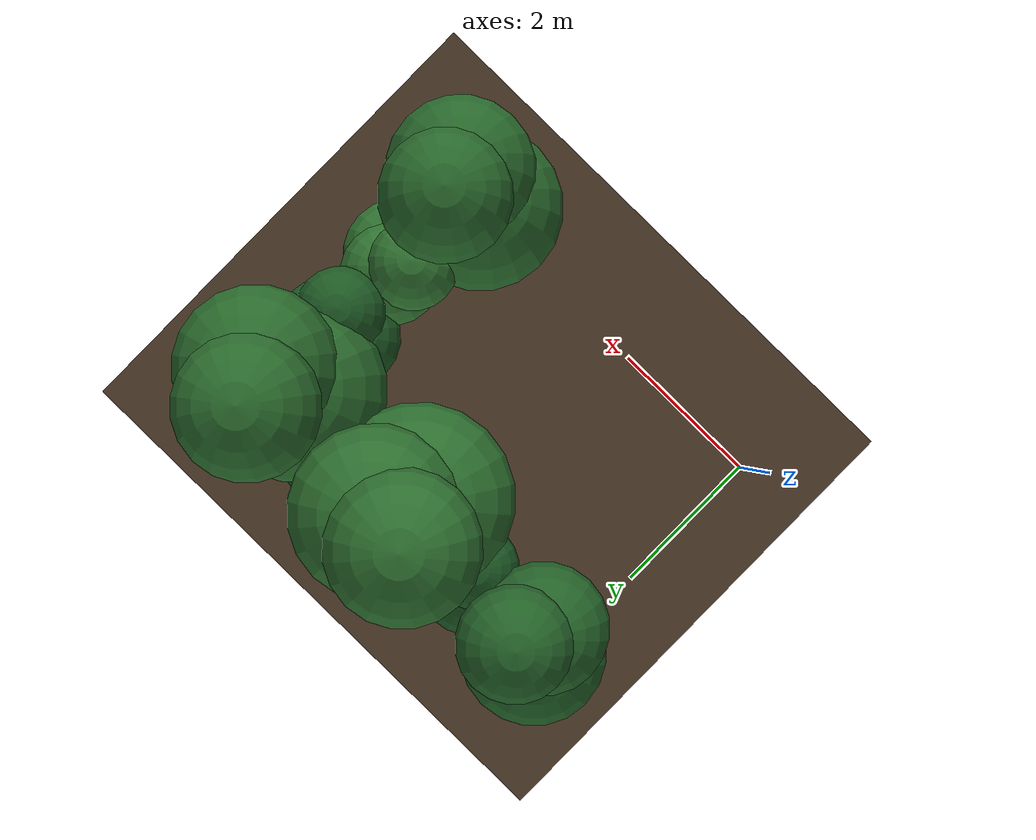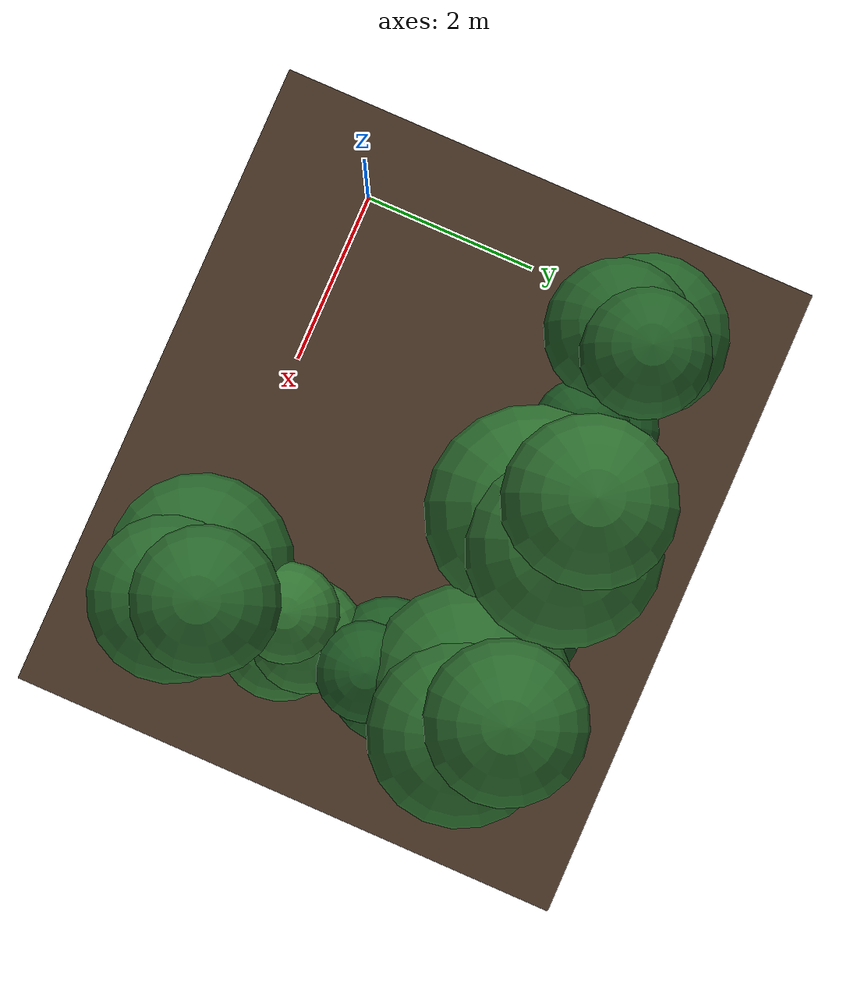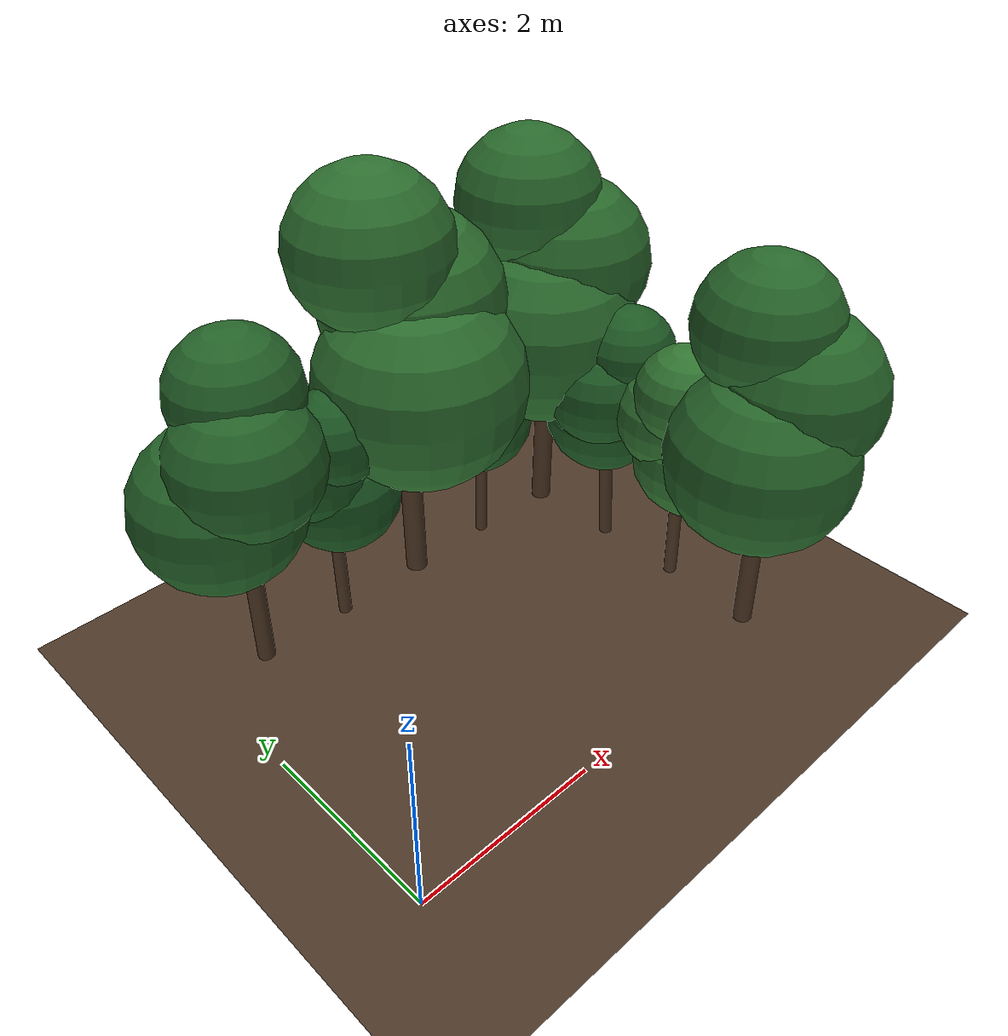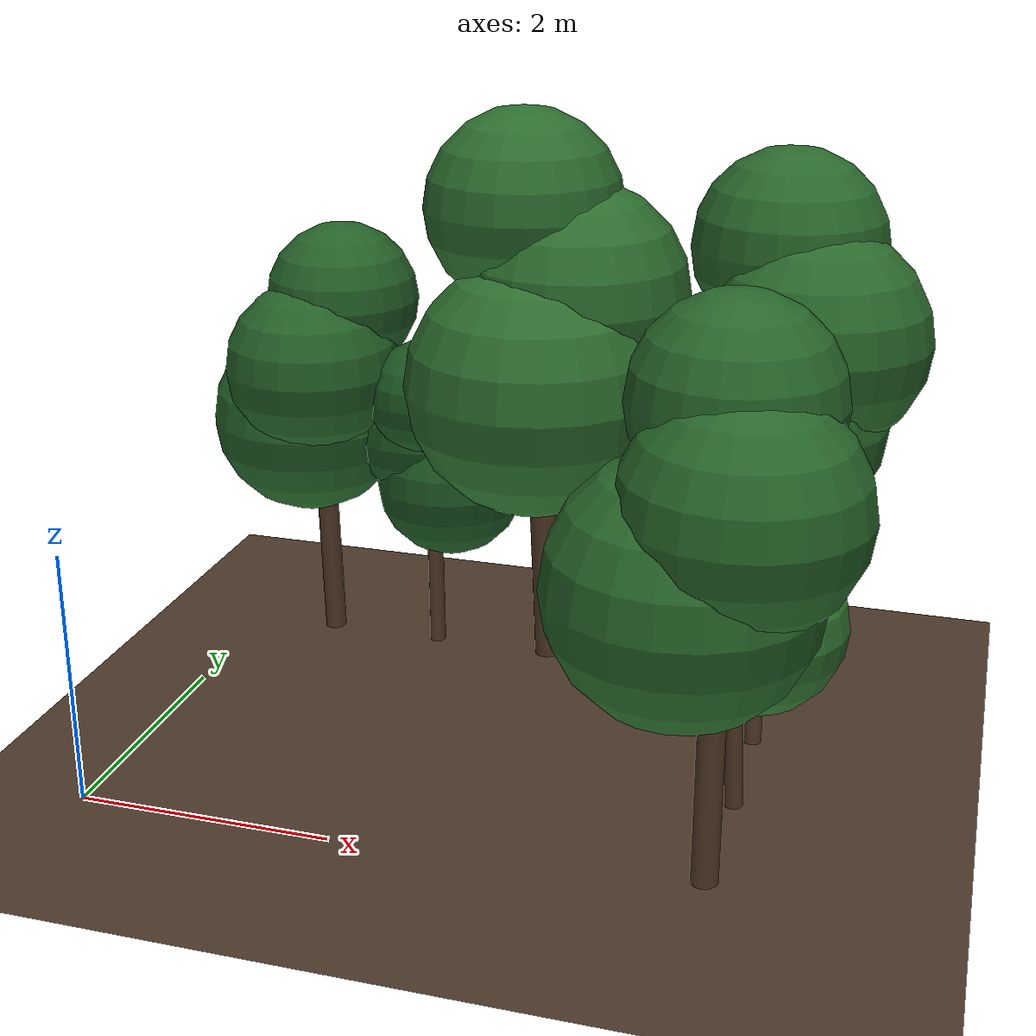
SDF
<sdf version="1.9">
 <world name="jim_field">
  <model name="ground_plane">
   <static>true</static>
   <link name="link">
    <collision name="collision">
     <geometry><plane><normal>0 0 1</normal><size>40 40</size></plane></geometry>
    </collision>
    <visual name="visual">
     <geometry><plane><normal>0 0 1</normal><size>40 40</size></plane></geometry>
     <material>
      <ambient>0.20 0.15 0.11 1</ambient>
      <diffuse>0.30 0.22 0.16 1</diffuse>
      <specular>0.01 0.01 0.01 1</specular>
     </material>
    </visual>
   </link>
  </model>
  <model name="field">
   <static>true</static>
   <pose>0.1837 -0.2516 0 0 0 0</pose>
   <model name="tree_5">
    <static>true</static>
    <pose>0.5056 3.5500 0 0 0 0</pose>
    <link name="link">
     <visual name="trunk">
      <pose>0 0 0.8213 0.0190 -0.0138 0</pose>
      <geometry><cylinder><radius>0.0913</radius><length>1.6426</length></cylinder></geometry>
      <material>
       <ambient>0.16 0.11 0.07 1</ambient>
       <diffuse>0.34 0.24 0.16 1</diffuse>
       <specular>0.03 0.03 0.03 1</specular>
      </material>
     </visual>
     <visual name="foliage_0">
      <pose>-0.1741 0.1000 2.0222 0 0 0</pose>
      <geometry><sphere><radius>0.8578</radius></sphere></geometry>
      <material>
       <ambient>0.067 0.196 0.073 1</ambient>
       <diffuse>0.144 0.391 0.161 1</diffuse>
       <specular>0.02 0.03 0.02 1</specular>
      </material>
     </visual>
     <visual name="foliage_1">
      <pose>0.0016 -0.2008 2.5698 0 0 0</pose>
      <geometry><sphere><radius>0.7574</radius></sphere></geometry>
      <material>
       <ambient>0.067 0.196 0.073 1</ambient>
       <diffuse>0.144 0.391 0.161 1</diffuse>
       <specular>0.02 0.03 0.02 1</specular>
      </material>
     </visual>
     <visual name="foliage_2">
      <pose>0.1725 0.1027 3.1173 0 0 0</pose>
      <geometry><sphere><radius>0.6570</radius></sphere></geometry>
      <material>
       <ambient>0.067 0.196 0.073 1</ambient>
       <diffuse>0.144 0.391 0.161 1</diffuse>
       <specular>0.02 0.03 0.02 1</specular>
      </material>
     </visual>
    </link>
   </model>
   <model name="tree_6">
    <static>true</static>
    <pose>1.5167 3.5500 0 0 0 0</pose>
    <link name="link">
     <visual name="trunk">
      <pose>0 0 0.6220 -0.0064 -0.0100 0</pose>
      <geometry><cylinder><radius>0.0691</radius><length>1.2441</length></cylinder></geometry>
      <material>
       <ambient>0.16 0.11 0.07 1</ambient>
       <diffuse>0.34 0.24 0.16 1</diffuse>
       <specular>0.03 0.03 0.03 1</specular>
      </material>
     </visual>
     <visual name="foliage_0">
      <pose>0.1354 0.0691 1.5316 0 0 0</pose>
      <geometry><sphere><radius>0.6497</radius></sphere></geometry>
      <material>
       <ambient>0.053 0.175 0.062 1</ambient>
       <diffuse>0.108 0.341 0.136 1</diffuse>
       <specular>0.02 0.03 0.02 1</specular>
      </material>
     </visual>
     <visual name="foliage_1">
      <pose>-0.1280 0.0820 1.9463 0 0 0</pose>
      <geometry><sphere><radius>0.5737</radius></sphere></geometry>
      <material>
       <ambient>0.053 0.175 0.062 1</ambient>
       <diffuse>0.108 0.341 0.136 1</diffuse>
       <specular>0.02 0.03 0.02 1</specular>
      </material>
     </visual>
     <visual name="foliage_2">
      <pose>-0.0062 -0.1519 2.3610 0 0 0</pose>
      <geometry><sphere><radius>0.4976</radius></sphere></geometry>
      <material>
       <ambient>0.053 0.175 0.062 1</ambient>
       <diffuse>0.108 0.341 0.136 1</diffuse>
       <specular>0.02 0.03 0.02 1</specular>
      </material>
     </visual>
    </link>
   </model>
   <model name="tree_7">
    <static>true</static>
    <pose>2.5278 3.5500 0 0 0 0</pose>
    <link name="link">
     <visual name="trunk">
      <pose>0 0 1.0522 0.0246 -0.0278 0</pose>
      <geometry><cylinder><radius>0.1169</radius><length>2.1043</length></cylinder></geometry>
      <material>
       <ambient>0.16 0.11 0.07 1</ambient>
       <diffuse>0.34 0.24 0.16 1</diffuse>
       <specular>0.03 0.03 0.03 1</specular>
      </material>
     </visual>
     <visual name="foliage_0">
      <pose>-0.0097 -0.2570 2.5907 0 0 0</pose>
      <geometry><sphere><radius>1.0989</radius></sphere></geometry>
      <material>
       <ambient>0.081 0.217 0.083 1</ambient>
       <diffuse>0.178 0.439 0.185 1</diffuse>
       <specular>0.02 0.03 0.02 1</specular>
      </material>
     </visual>
     <visual name="foliage_1">
      <pose>0.2267 0.1214 3.2921 0 0 0</pose>
      <geometry><sphere><radius>0.9703</radius></sphere></geometry>
      <material>
       <ambient>0.081 0.217 0.083 1</ambient>
       <diffuse>0.178 0.439 0.185 1</diffuse>
       <specular>0.02 0.03 0.02 1</specular>
      </material>
     </visual>
     <visual name="foliage_2">
      <pose>-0.2193 0.1344 3.9936 0 0 0</pose>
      <geometry><sphere><radius>0.8417</radius></sphere></geometry>
      <material>
       <ambient>0.081 0.217 0.083 1</ambient>
       <diffuse>0.178 0.439 0.185 1</diffuse>
       <specular>0.02 0.03 0.02 1</specular>
      </material>
     </visual>
    </link>
   </model>
   <model name="tree_8">
    <static>true</static>
    <pose>3.5389 3.5500 0 0 0 0</pose>
    <link name="link">
     <visual name="trunk">
      <pose>0 0 0.6055 0.0133 0.0031 0</pose>
      <geometry><cylinder><radius>0.0673</radius><length>1.2109</length></cylinder></geometry>
      <material>
       <ambient>0.16 0.11 0.07 1</ambient>
       <diffuse>0.34 0.24 0.16 1</diffuse>
       <specular>0.03 0.03 0.03 1</specular>
      </material>
     </visual>
     <visual name="foliage_0">
      <pose>0.0586 0.1359 1.4908 0 0 0</pose>
      <geometry><sphere><radius>0.6324</radius></sphere></geometry>
      <material>
       <ambient>0.058 0.182 0.066 1</ambient>
       <diffuse>0.119 0.357 0.144 1</diffuse>
       <specular>0.02 0.03 0.02 1</specular>
      </material>
     </visual>
     <visual name="foliage_1">
      <pose>-0.1469 -0.0180 1.8944 0 0 0</pose>
      <geometry><sphere><radius>0.5584</radius></sphere></geometry>
      <material>
       <ambient>0.058 0.182 0.066 1</ambient>
       <diffuse>0.119 0.357 0.144 1</diffuse>
       <specular>0.02 0.03 0.02 1</specular>
      </material>
     </visual>
     <visual name="foliage_2">
      <pose>0.0897 -0.1177 2.2981 0 0 0</pose>
      <geometry><sphere><radius>0.4844</radius></sphere></geometry>
      <material>
       <ambient>0.058 0.182 0.066 1</ambient>
       <diffuse>0.119 0.357 0.144 1</diffuse>
       <specular>0.02 0.03 0.02 1</specular>
      </material>
     </visual>
    </link>
   </model>
   <model name="tree_9">
    <static>true</static>
    <pose>4.5500 3.5500 0 0 0 0</pose>
    <link name="link">
     <visual name="trunk">
      <pose>0 0 0.9991 -0.0149 0.0458 0</pose>
      <geometry><cylinder><radius>0.1110</radius><length>1.9983</length></cylinder></geometry>
      <material>
       <ambient>0.16 0.11 0.07 1</ambient>
       <diffuse>0.34 0.24 0.16 1</diffuse>
       <specular>0.03 0.03 0.03 1</specular>
      </material>
     </visual>
     <visual name="foliage_0">
      <pose>-0.1818 -0.1631 2.4601 0 0 0</pose>
      <geometry><sphere><radius>1.0435</radius></sphere></geometry>
      <material>
       <ambient>0.076 0.209 0.079 1</ambient>
       <diffuse>0.165 0.420 0.175 1</diffuse>
       <specular>0.02 0.03 0.02 1</specular>
      </material>
     </visual>
     <visual name="foliage_1">
      <pose>0.2326 -0.0746 3.1262 0 0 0</pose>
      <geometry><sphere><radius>0.9214</radius></sphere></geometry>
      <material>
       <ambient>0.076 0.209 0.079 1</ambient>
       <diffuse>0.165 0.420 0.175 1</diffuse>
       <specular>0.02 0.03 0.02 1</specular>
      </material>
     </visual>
     <visual name="foliage_2">
      <pose>-0.0530 0.2384 3.7922 0 0 0</pose>
      <geometry><sphere><radius>0.7993</radius></sphere></geometry>
      <material>
       <ambient>0.076 0.209 0.079 1</ambient>
       <diffuse>0.165 0.420 0.175 1</diffuse>
       <specular>0.02 0.03 0.02 1</specular>
      </material>
     </visual>
    </link>
   </model>
   <model name="tree_10">
    <static>true</static>
    <pose>4.5500 2.5357 0 0 0 0</pose>
    <link name="link">
     <visual name="trunk">
      <pose>0 0 0.6456 -0.0397 -0.0244 0</pose>
      <geometry><cylinder><radius>0.0717</radius><length>1.2912</length></cylinder></geometry>
      <material>
       <ambient>0.16 0.11 0.07 1</ambient>
       <diffuse>0.34 0.24 0.16 1</diffuse>
       <specular>0.03 0.03 0.03 1</specular>
      </material>
     </visual>
     <visual name="foliage_0">
      <pose>0.0797 0.1362 1.5896 0 0 0</pose>
      <geometry><sphere><radius>0.6743</radius></sphere></geometry>
      <material>
       <ambient>0.057 0.180 0.065 1</ambient>
       <diffuse>0.117 0.354 0.142 1</diffuse>
       <specular>0.02 0.03 0.02 1</specular>
      </material>
     </visual>
     <visual name="foliage_1">
      <pose>-0.1578 0.0001 2.0199 0 0 0</pose>
      <geometry><sphere><radius>0.5954</radius></sphere></geometry>
      <material>
       <ambient>0.057 0.180 0.065 1</ambient>
       <diffuse>0.117 0.354 0.142 1</diffuse>
       <specular>0.02 0.03 0.02 1</specular>
      </material>
     </visual>
     <visual name="foliage_2">
      <pose>0.0796 -0.1363 2.4503 0 0 0</pose>
      <geometry><sphere><radius>0.5165</radius></sphere></geometry>
      <material>
       <ambient>0.057 0.180 0.065 1</ambient>
       <diffuse>0.117 0.354 0.142 1</diffuse>
       <specular>0.02 0.03 0.02 1</specular>
      </material>
     </visual>
    </link>
   </model>
   <model name="tree_11">
    <static>true</static>
    <pose>4.5500 1.5214 0 0 0 0</pose>
    <link name="link">
     <visual name="trunk">
      <pose>0 0 0.6485 0.0259 -0.0425 0</pose>
      <geometry><cylinder><radius>0.0721</radius><length>1.2970</length></cylinder></geometry>
      <material>
       <ambient>0.16 0.11 0.07 1</ambient>
       <diffuse>0.34 0.24 0.16 1</diffuse>
       <specular>0.03 0.03 0.03 1</specular>
      </material>
     </visual>
     <visual name="foliage_0">
      <pose>0.1330 -0.0863 1.5967 0 0 0</pose>
      <geometry><sphere><radius>0.6773</radius></sphere></geometry>
      <material>
       <ambient>0.088 0.227 0.089 1</ambient>
       <diffuse>0.195 0.463 0.197 1</diffuse>
       <specular>0.02 0.03 0.02 1</specular>
      </material>
     </visual>
     <visual name="foliage_1">
      <pose>0.0073 0.1584 2.0291 0 0 0</pose>
      <geometry><sphere><radius>0.5981</radius></sphere></geometry>
      <material>
       <ambient>0.088 0.227 0.089 1</ambient>
       <diffuse>0.195 0.463 0.197 1</diffuse>
       <specular>0.02 0.03 0.02 1</specular>
      </material>
     </visual>
     <visual name="foliage_2">
      <pose>-0.1404 -0.0736 2.4614 0 0 0</pose>
      <geometry><sphere><radius>0.5188</radius></sphere></geometry>
      <material>
       <ambient>0.088 0.227 0.089 1</ambient>
       <diffuse>0.195 0.463 0.197 1</diffuse>
       <specular>0.02 0.03 0.02 1</specular>
      </material>
     </visual>
    </link>
   </model>
   <model name="tree_12">
    <static>true</static>
    <pose>4.5500 0.5071 0 0 0 0</pose>
    <link name="link">
     <visual name="trunk">
      <pose>0 0 0.9157 -0.0036 0.0064 0</pose>
      <geometry><cylinder><radius>0.1017</radius><length>1.8314</length></cylinder></geometry>
      <material>
       <ambient>0.16 0.11 0.07 1</ambient>
       <diffuse>0.34 0.24 0.16 1</diffuse>
       <specular>0.03 0.03 0.03 1</specular>
      </material>
     </visual>
     <visual name="foliage_0">
      <pose>-0.2114 -0.0736 2.2547 0 0 0</pose>
      <geometry><sphere><radius>0.9564</radius></sphere></geometry>
      <material>
       <ambient>0.073 0.205 0.077 1</ambient>
       <diffuse>0.158 0.411 0.171 1</diffuse>
       <specular>0.02 0.03 0.02 1</specular>
      </material>
     </visual>
     <visual name="foliage_1">
      <pose>0.1703 -0.1453 2.8652 0 0 0</pose>
      <geometry><sphere><radius>0.8445</radius></sphere></geometry>
      <material>
       <ambient>0.073 0.205 0.077 1</ambient>
       <diffuse>0.158 0.411 0.171 1</diffuse>
       <specular>0.02 0.03 0.02 1</specular>
      </material>
     </visual>
     <visual name="foliage_2">
      <pose>0.0395 0.2203 3.4757 0 0 0</pose>
      <geometry><sphere><radius>0.7326</radius></sphere></geometry>
      <material>
       <ambient>0.073 0.205 0.077 1</ambient>
       <diffuse>0.158 0.411 0.171 1</diffuse>
       <specular>0.02 0.03 0.02 1</specular>
      </material>
     </visual>
    </link>
   </model>
  </model>
 </world>
</sdf>
